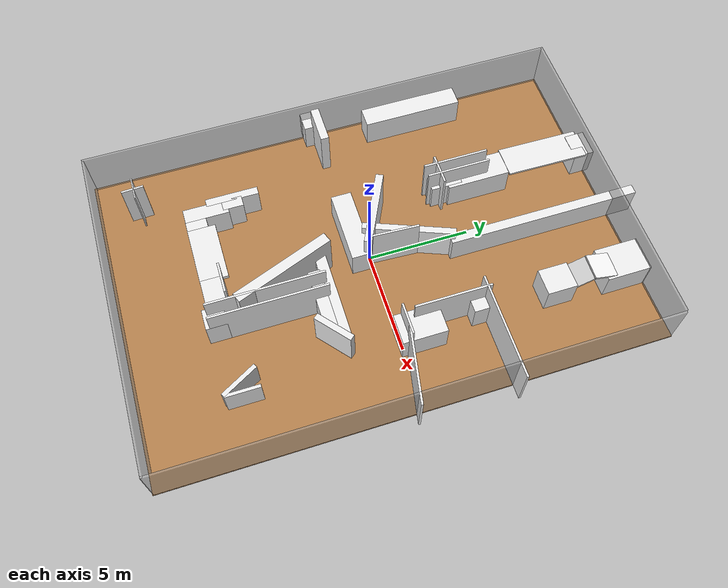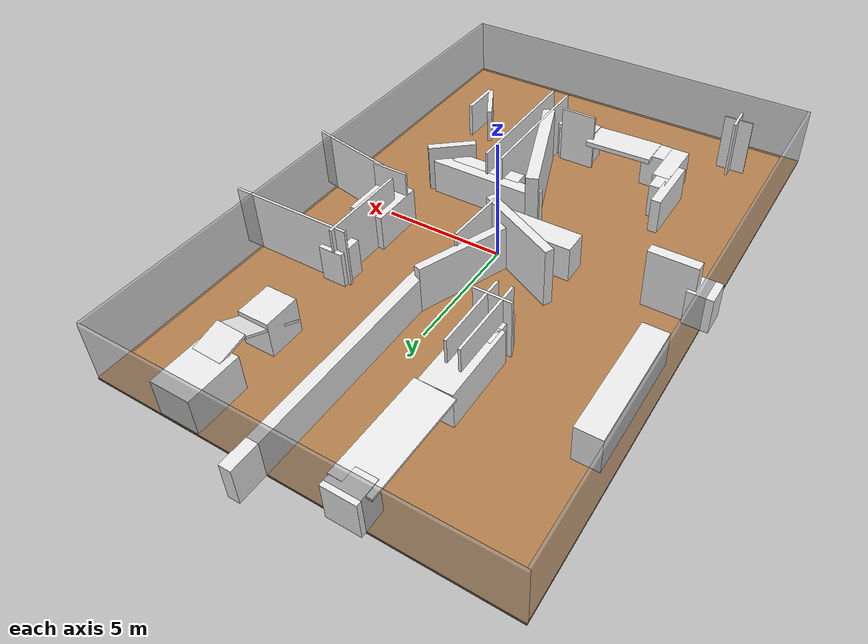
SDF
<sdf version="1.7">
 <world name="default">
  <light name="sun" type="directional">
   <pose>0 0 10 0 -0 0</pose>
   <diffuse>0.8 0.8 0.8 1</diffuse>
   <specular>0.2 0.2 0.2 1</specular>
   <attenuation>
    <range>1000</range>
    <constant>0.9</constant>
    <linear>0.01</linear>
    <quadratic>0.001</quadratic>
   </attenuation>
   <direction>-0.5 0.1 -0.9</direction>
   <spot><inner_angle>0</inner_angle><outer_angle>0</outer_angle><falloff>0</falloff></spot>
  </light>
  <physics name="default_physics" default="0" type="ode">
   <real_time_update_rate>1000</real_time_update_rate>
   <max_step_size>0.001</max_step_size>
   <real_time_factor>1</real_time_factor>
   <ode>
    <solver>
     <type>quick</type>
     <iters>150</iters>
     <precon_iters>0</precon_iters>
     <sor>1.4</sor>
     <use_dynamic_moi_rescaling>1</use_dynamic_moi_rescaling>
    </solver>
    <constraints>
     <cfm>1e-05</cfm>
     <erp>0.2</erp>
     <contact_max_correcting_vel>2000</contact_max_correcting_vel>
     <contact_surface_layer>0.01</contact_surface_layer>
    </constraints>
   </ode>
  </physics>
  <model name="box_1">
   <pose>0.05 -12.05 1.25 0 -0 0</pose>
   <static>1</static>
   <link name="link">
    <collision name="collision"><geometry><box><size>16.1 0.1 2.5</size></box></geometry></collision>
    <visual name="visual">
     <geometry><box><size>16.1 0.1 2.5</size></box></geometry>
     <material>
      <script><name>Gazebo/GreyTransparent</name><uri>file://media/materials/scripts/gazebo.material</uri></script>
     </material>
    </visual>
   </link>
  </model>
  <model name="box_2">
   <pose>8.06174 -0.026302 1.25 0 -0 0</pose>
   <static>1</static>
   <link name="link">
    <collision name="collision"><geometry><box><size>0.1 24.1 2.5</size></box></geometry></collision>
    <visual name="visual">
     <geometry><box><size>0.1 24.1 2.5</size></box></geometry>
     <material>
      <script><name>Gazebo/GreyTransparent</name><uri>file://media/materials/scripts/gazebo.material</uri></script>
     </material>
    </visual>
   </link>
  </model>
  <model name="box_3">
   <pose>-0.05 12.05 1.25 0 -0 0</pose>
   <static>1</static>
   <link name="link">
    <collision name="collision"><geometry><box><size>16.1 0.1 2.5</size></box></geometry></collision>
    <visual name="visual">
     <geometry><box><size>16.1 0.1 2.5</size></box></geometry>
     <material>
      <script><name>Gazebo/GreyTransparent</name><uri>file://media/materials/scripts/gazebo.material</uri></script>
     </material>
    </visual>
   </link>
  </model>
  <model name="box_4">
   <pose>-8.05 -0.05 1.25 0 -0 0</pose>
   <static>1</static>
   <link name="link">
    <collision name="collision"><geometry><box><size>0.1 24.1 2.5</size></box></geometry></collision>
    <visual name="visual">
     <geometry><box><size>0.1 24.1 2.5</size></box></geometry>
     <material>
      <script><name>Gazebo/GreyTransparent</name><uri>file://media/materials/scripts/gazebo.material</uri></script>
     </material>
    </visual>
   </link>
  </model>
  <model name="box_5">
   <pose>0.008855 -0.029843 -0.05 0 -0 0</pose>
   <static>1</static>
   <link name="link">
    <collision name="collision"><geometry><box><size>16.2 24.2 0.1</size></box></geometry></collision>
    <visual name="visual">
     <geometry><box><size>16.2 24.2 0.1</size></box></geometry>
     <material>
      <script><name>Gazebo/WoodFloor</name><uri>file://media/materials/scripts/gazebo.material</uri></script>
     </material>
    </visual>
   </link>
  </model>
  <gravity>0 0 -9.8066</gravity>
  <magnetic_field>6e-06 2.3e-05 -4.2e-05</magnetic_field>
  <atmosphere type="adiabatic"/>
  <scene><ambient>0.4 0.4 0.4 1</ambient><background>0.7 0.7 0.7 1</background><shadows>1</shadows></scene>
  <spherical_coordinates>
   <surface_model>EARTH_WGS84</surface_model>
   <latitude_deg>0</latitude_deg>
   <longitude_deg>0</longitude_deg>
   <elevation>0</elevation>
   <heading_deg>0</heading_deg>
  </spherical_coordinates>
  <model name="box_8_clone">
   <pose>6.785 -0.087834 1.25 0 0 -0.191358</pose>
   <static>1</static>
   <link name="link">
    <collision name="collision"><geometry><box><size>3.67087 0.1 2.5</size></box></geometry></collision>
    <visual name="visual">
     <geometry><box><size>3.67087 0.1 2.5</size></box></geometry>
     <material>
      <script><name>Gazebo/White</name><uri>file://media/materials/scripts/gazebo.material</uri></script>
     </material>
    </visual>
   </link>
  </model>
  <model name="box_9_clone_clone_0">
   <pose>-3.24108 -7.55994 0.75 0 -0 0</pose>
   <static>1</static>
   <link name="link">
    <collision name="collision"><geometry><box><size>1 1 1.5</size></box></geometry></collision>
    <visual name="visual">
     <geometry><box><size>1 1 1.5</size></box></geometry>
     <material>
      <script><name>Gazebo/White</name><uri>file://media/materials/scripts/gazebo.material</uri></script>
     </material>
    </visual>
   </link>
  </model>
  <model name="box_9_clone_clone_1">
   <pose>0.352261 -7.55684 0.75 0 -0 0</pose>
   <static>1</static>
   <link name="link">
    <collision name="collision"><geometry><box><size>1.50562 1 1.5</size></box></geometry></collision>
    <visual name="visual">
     <geometry><box><size>1.50562 1 1.5</size></box></geometry>
     <material>
      <script><name>Gazebo/White</name><uri>file://media/materials/scripts/gazebo.material</uri></script>
     </material>
    </visual>
   </link>
  </model>
  <model name="box_9_clone_clone_2">
   <pose>-4.05415 -6.98085 0.75 0 -0 0</pose>
   <static>1</static>
   <link name="link">
    <collision name="collision"><geometry><box><size>0.728074 2.14113 1.5</size></box></geometry></collision>
    <visual name="visual">
     <geometry><box><size>0.728074 2.14113 1.5</size></box></geometry>
     <material>
      <script><name>Gazebo/White</name><uri>file://media/materials/scripts/gazebo.material</uri></script>
     </material>
    </visual>
   </link>
  </model>
  <model name="box_9_clone_clone_3">
   <pose>5.34447 -7.41709 0.75 0 -0 0</pose>
   <static>1</static>
   <link name="link">
    <collision name="collision"><geometry><box><size>0.152612 1.66543 1.5</size></box></geometry></collision>
    <visual name="visual">
     <geometry><box><size>0.152612 1.66543 1.5</size></box></geometry>
     <material>
      <script><name>Gazebo/White</name><uri>file://media/materials/scripts/gazebo.material</uri></script>
     </material>
    </visual>
   </link>
  </model>
  <model name="box_8_clone_clone_13_clone_clone_clone_clone_0">
   <pose>0.045584 1.92534 0.706232 0 0 -1.95097</pose>
   <static>1</static>
   <link name="link">
    <collision name="collision"><geometry><box><size>4.43938 0.325829 2.5</size></box></geometry></collision>
    <visual name="visual">
     <geometry><box><size>4.43938 0.325829 2.5</size></box></geometry>
     <material>
      <script><name>Gazebo/White</name><uri>file://media/materials/scripts/gazebo.material</uri></script>
     </material>
    </visual>
   </link>
  </model>
  <model name="box_8_clone_clone_11_clone">
   <pose>0.547651 -4.29786 1.25 0 0 -2.77666</pose>
   <static>1</static>
   <link name="link">
    <collision name="collision"><geometry><box><size>0.506942 5.04986 2.5</size></box></geometry></collision>
    <visual name="visual">
     <geometry><box><size>0.506942 5.04986 2.5</size></box></geometry>
     <material>
      <script><name>Gazebo/White</name><uri>file://media/materials/scripts/gazebo.material</uri></script>
     </material>
    </visual>
   </link>
  </model>
  <model name="box_8_clone_clone_4_clone_2">
   <pose>-1.23511 0.601944 1.25 0 -0 2.68738</pose>
   <static>1</static>
   <link name="link">
    <collision name="collision"><geometry><box><size>3.75949 0.370167 2.5</size></box></geometry></collision>
    <visual name="visual">
     <geometry><box><size>3.75949 0.370167 2.5</size></box></geometry>
     <material>
      <script><name>Gazebo/White</name><uri>file://media/materials/scripts/gazebo.material</uri></script>
     </material>
    </visual>
   </link>
  </model>
  <model name="box_9_clone_clone_7_clone">
   <pose>-7.20708 4.47733 0.75 0 -0 0</pose>
   <static>1</static>
   <link name="link">
    <collision name="collision"><geometry><box><size>1 4.97616 1.5</size></box></geometry></collision>
    <visual name="visual">
     <geometry><box><size>1 4.97616 1.5</size></box></geometry>
     <material>
      <script><name>Gazebo/White</name><uri>file://media/materials/scripts/gazebo.material</uri></script>
     </material>
    </visual>
   </link>
  </model>
  <model name="box_9_clone_clone_7_clone_clone">
   <pose>-7.89766 -0.627489 0.75 0 -0 0</pose>
   <static>1</static>
   <link name="link">
    <collision name="collision"><geometry><box><size>1 1 1.5</size></box></geometry></collision>
    <visual name="visual">
     <geometry><box><size>1 1 1.5</size></box></geometry>
     <material>
      <script><name>Gazebo/White</name><uri>file://media/materials/scripts/gazebo.material</uri></script>
     </material>
    </visual>
   </link>
  </model>
  <model name="box_9_clone_clone_7_clone_clone_3">
   <pose>-4.51233 -5.59662 0.75 0 -0 0</pose>
   <static>1</static>
   <link name="link">
    <collision name="collision"><geometry><box><size>0.396462 2.57973 1.5</size></box></geometry></collision>
    <visual name="visual">
     <geometry><box><size>0.396462 2.57973 1.5</size></box></geometry>
     <material>
      <script><name>Gazebo/White</name><uri>file://media/materials/scripts/gazebo.material</uri></script>
     </material>
    </visual>
   </link>
  </model>
  <model name="box_9_clone_clone_7_clone_clone_4">
   <pose>-1.76203 -7.3925 1.38489 0 -1.54749 0</pose>
   <static>1</static>
   <link name="link">
    <collision name="collision"><geometry><box><size>0.206609 1.34821 2.856</size></box></geometry></collision>
    <visual name="visual">
     <geometry><box><size>0.206609 1.34821 2.856</size></box></geometry>
     <material>
      <script><name>Gazebo/White</name><uri>file://media/materials/scripts/gazebo.material</uri></script>
     </material>
    </visual>
   </link>
  </model>
  <model name="box_9_clone_clone_7_clone_clone_5">
   <pose>-4.14775 -5.66293 0.75 0 -0 0</pose>
   <static>1</static>
   <link name="link">
    <collision name="collision"><geometry><box><size>0.542495 1 1.5</size></box></geometry></collision>
    <visual name="visual">
     <geometry><box><size>0.542495 1 1.5</size></box></geometry>
     <material>
      <script><name>Gazebo/White</name><uri>file://media/materials/scripts/gazebo.material</uri></script>
     </material>
    </visual>
   </link>
  </model>
  <model name="box_9_clone_clone_5_clone_2_clone_0">
   <pose>4.39452 7.68685 0.75 0 -0 0</pose>
   <static>1</static>
   <link name="link">
    <collision name="collision"><geometry><box><size>1.2731 1.44493 1.5</size></box></geometry></collision>
    <visual name="visual">
     <geometry><box><size>1.2731 1.44493 1.5</size></box></geometry>
     <material>
      <script><name>Gazebo/White</name><uri>file://media/materials/scripts/gazebo.material</uri></script>
     </material>
    </visual>
   </link>
  </model>
  <model name="box_9_clone_clone_5_clone_2_clone_0_clone_0">
   <pose>4.83543 -7.43802 0.75 0 -0 2.07875</pose>
   <static>1</static>
   <link name="link">
    <collision name="collision"><geometry><box><size>1.90123 0.208944 1.5</size></box></geometry></collision>
    <visual name="visual">
     <geometry><box><size>1.90123 0.208944 1.5</size></box></geometry>
     <material>
      <script><name>Gazebo/White</name><uri>file://media/materials/scripts/gazebo.material</uri></script>
     </material>
    </visual>
   </link>
  </model>
  <model name="box_6_clone_clone_4_clone">
   <pose>4.47434 10.5847 1.40455 0 -1.3182 1.53996</pose>
   <static>1</static>
   <link name="link">
    <collision name="collision"><geometry><box><size>0.1 1.23982 2.76392</size></box></geometry></collision>
    <visual name="visual">
     <geometry><box><size>0.1 1.23982 2.76392</size></box></geometry>
     <material>
      <script><name>Gazebo/White</name><uri>file://media/materials/scripts/gazebo.material</uri></script>
     </material>
    </visual>
   </link>
  </model>
  <model name="box_9_clone_clone_7_clone_clone_clone">
   <pose>-1.2304 -0.521784 0.75 0 -0 0</pose>
   <static>1</static>
   <link name="link">
    <collision name="collision"><geometry><box><size>3.55314 1 1.5</size></box></geometry></collision>
    <visual name="visual">
     <geometry><box><size>3.55314 1 1.5</size></box></geometry>
     <material>
      <script><name>Gazebo/White</name><uri>file://media/materials/scripts/gazebo.material</uri></script>
     </material>
    </visual>
   </link>
  </model>
  <model name="box_8_clone_clone_3_clone">
   <pose>6.25131 4.20674 1.25 0 -0 0</pose>
   <static>1</static>
   <link name="link">
    <collision name="collision"><geometry><box><size>5.04273 0.1 2.5</size></box></geometry></collision>
    <visual name="visual">
     <geometry><box><size>5.04273 0.1 2.5</size></box></geometry>
     <material>
      <script><name>Gazebo/White</name><uri>file://media/materials/scripts/gazebo.material</uri></script>
     </material>
    </visual>
   </link>
  </model>
  <model name="box_9_clone_clone_7_clone_0">
   <pose>0.952701 8.47024 0.75 0 -0 0</pose>
   <static>1</static>
   <link name="link">
    <collision name="collision"><geometry><box><size>0.463616 9.49899 1.5</size></box></geometry></collision>
    <visual name="visual">
     <geometry><box><size>0.463616 9.49899 1.5</size></box></geometry>
     <material>
      <script><name>Gazebo/White</name><uri>file://media/materials/scripts/gazebo.material</uri></script>
     </material>
    </visual>
   </link>
  </model>
  <model name="box_9_clone_clone_9_clone">
   <pose>-2.30467 11.7929 0.75 0 -0 0</pose>
   <static>1</static>
   <link name="link">
    <collision name="collision"><geometry><box><size>1.30137 1 1.5</size></box></geometry></collision>
    <visual name="visual">
     <geometry><box><size>1.30137 1 1.5</size></box></geometry>
     <material>
      <script><name>Gazebo/White</name><uri>file://media/materials/scripts/gazebo.material</uri></script>
     </material>
    </visual>
   </link>
  </model>
  <model name="box_6_clone_clone_3_clone_clone_clone">
   <pose>-2.74377 5.24994 1.25 0 -0 0</pose>
   <static>1</static>
   <link name="link">
    <collision name="collision"><geometry><box><size>0.1 3.23033 2.5</size></box></geometry></collision>
    <visual name="visual">
     <geometry><box><size>0.1 3.23033 2.5</size></box></geometry>
     <material>
      <script><name>Gazebo/White</name><uri>file://media/materials/scripts/gazebo.material</uri></script>
     </material>
    </visual>
   </link>
  </model>
  <model name="box_6_clone_clone_3_clone_clone_clone_clone">
   <pose>4.22525 2.59008 1.25 0 -0 0</pose>
   <static>1</static>
   <link name="link">
    <collision name="collision"><geometry><box><size>0.1 3.67789 2.5</size></box></geometry></collision>
    <visual name="visual">
     <geometry><box><size>0.1 3.67789 2.5</size></box></geometry>
     <material>
      <script><name>Gazebo/White</name><uri>file://media/materials/scripts/gazebo.material</uri></script>
     </material>
    </visual>
   </link>
  </model>
  <model name="box_6_clone_clone_3_clone_clone_clone_clone_0">
   <pose>2.0182 -5.31678 1.25 0 -0 0</pose>
   <static>1</static>
   <link name="link">
    <collision name="collision"><geometry><box><size>0.1 5.60332 2.5</size></box></geometry></collision>
    <visual name="visual">
     <geometry><box><size>0.1 5.60332 2.5</size></box></geometry>
     <material>
      <script><name>Gazebo/White</name><uri>file://media/materials/scripts/gazebo.material</uri></script>
     </material>
    </visual>
   </link>
  </model>
  <model name="box_6_clone_clone_3_clone_clone_clone_clone_0_clone">
   <pose>1.33283 -5.29976 1.25 0 -0 0</pose>
   <static>1</static>
   <link name="link">
    <collision name="collision"><geometry><box><size>0.1 5.60332 2.5</size></box></geometry></collision>
    <visual name="visual">
     <geometry><box><size>0.1 5.60332 2.5</size></box></geometry>
     <material>
      <script><name>Gazebo/White</name><uri>file://media/materials/scripts/gazebo.material</uri></script>
     </material>
    </visual>
   </link>
  </model>
  <model name="box_9_clone_clone_5_clone_2_clone_0_clone_clone">
   <pose>1.9469 -2.43744 0.75 0 -0 0</pose>
   <static>1</static>
   <link name="link">
    <collision name="collision"><geometry><box><size>4.74882 0.537178 1.5</size></box></geometry></collision>
    <visual name="visual">
     <geometry><box><size>4.74882 0.537178 1.5</size></box></geometry>
     <material>
      <script><name>Gazebo/White</name><uri>file://media/materials/scripts/gazebo.material</uri></script>
     </material>
    </visual>
   </link>
  </model>
  <model name="box_8_clone_clone">
   <pose>4.67077 0.276191 1.25 0 -0 0</pose>
   <static>1</static>
   <link name="link">
    <collision name="collision"><geometry><box><size>1.5 0.1 2.5</size></box></geometry></collision>
    <visual name="visual">
     <geometry><box><size>1.5 0.1 2.5</size></box></geometry>
     <material>
      <script><name>Gazebo/White</name><uri>file://media/materials/scripts/gazebo.material</uri></script>
     </material>
    </visual>
   </link>
  </model>
  <model name="box_9_clone_clone_7_clone_clone_0">
   <pose>-2.43804 4.59154 0.75 0 -0 0</pose>
   <static>1</static>
   <link name="link">
    <collision name="collision"><geometry><box><size>1 1.54675 1.5</size></box></geometry></collision>
    <visual name="visual">
     <geometry><box><size>1 1.54675 1.5</size></box></geometry>
     <material>
      <script><name>Gazebo/White</name><uri>file://media/materials/scripts/gazebo.material</uri></script>
     </material>
    </visual>
   </link>
  </model>
  <model name="box_9_clone_clone_5_clone_2_clone_0_clone_0_clone">
   <pose>1.56966 -7.808 0.75 0 -0 0</pose>
   <static>1</static>
   <link name="link">
    <collision name="collision"><geometry><box><size>1 1 1.5</size></box></geometry></collision>
    <visual name="visual">
     <geometry><box><size>1 1 1.5</size></box></geometry>
     <material>
      <script><name>Gazebo/White</name><uri>file://media/materials/scripts/gazebo.material</uri></script>
     </material>
    </visual>
   </link>
  </model>
  <model name="box_9_clone_clone_5_clone_2_clone_clone_clone_0_clone">
   <pose>4.3636 3.94247 0.75 0 -0 0</pose>
   <static>1</static>
   <link name="link">
    <collision name="collision"><geometry><box><size>0.996807 1.00784 1.5</size></box></geometry></collision>
    <visual name="visual">
     <geometry><box><size>0.996807 1.00784 1.5</size></box></geometry>
     <material>
      <script><name>Gazebo/White</name><uri>file://media/materials/scripts/gazebo.material</uri></script>
     </material>
    </visual>
   </link>
  </model>
  <model name="box_9_clone_clone_5_clone_2_clone_clone_clone_0_clone_clone">
   <pose>4.63539 0.931491 0.75 0 -0 0</pose>
   <static>1</static>
   <link name="link">
    <collision name="collision"><geometry><box><size>1.44369 2.14316 1.5</size></box></geometry></collision>
    <visual name="visual">
     <geometry><box><size>1.44369 2.14316 1.5</size></box></geometry>
     <material>
      <script><name>Gazebo/White</name><uri>file://media/materials/scripts/gazebo.material</uri></script>
     </material>
    </visual>
   </link>
  </model>
  <model name="box_6_clone_clone_3_clone_clone_clone_clone_1">
   <pose>-2.16782 5.21001 1.25 0 -0 0.001144</pose>
   <static>1</static>
   <link name="link">
    <collision name="collision"><geometry><box><size>0.1 3.12165 2.5</size></box></geometry></collision>
    <visual name="visual">
     <geometry><box><size>0.1 3.12165 2.5</size></box></geometry>
     <material>
      <script><name>Gazebo/White</name><uri>file://media/materials/scripts/gazebo.material</uri></script>
     </material>
    </visual>
   </link>
  </model>
  <model name="box_9_clone_clone_8_clone_0_clone">
   <pose>-2.43485 6.21978 0.75 0 -0 0</pose>
   <static>1</static>
   <link name="link">
    <collision name="collision"><geometry><box><size>1.29716 3.13013 1.5</size></box></geometry></collision>
    <visual name="visual">
     <geometry><box><size>1.29716 3.13013 1.5</size></box></geometry>
     <material>
      <script><name>Gazebo/White</name><uri>file://media/materials/scripts/gazebo.material</uri></script>
     </material>
    </visual>
   </link>
  </model>
  <model name="box_8_clone_clone_3_clone_clone_clone">
   <pose>-6.73637 -0.479811 1.25 0 -0 0</pose>
   <static>1</static>
   <link name="link">
    <collision name="collision"><geometry><box><size>1.9027 0.415191 2.5</size></box></geometry></collision>
    <visual name="visual">
     <geometry><box><size>1.9027 0.415191 2.5</size></box></geometry>
     <material>
      <script><name>Gazebo/White</name><uri>file://media/materials/scripts/gazebo.material</uri></script>
     </material>
    </visual>
   </link>
  </model>
  <audio><device>default</device></audio>
  <model name="box_6_clone_clone_4_clone_clone">
   <pose>4.38248 8.16427 1.1171 0 -1.11157 -1.60232</pose>
   <static>1</static>
   <link name="link">
    <collision name="collision"><geometry><box><size>0.1 1.21917 2.5</size></box></geometry></collision>
    <visual name="visual">
     <geometry><box><size>0.1 1.21917 2.5</size></box></geometry>
     <material>
      <script><name>Gazebo/White</name><uri>file://media/materials/scripts/gazebo.material</uri></script>
     </material>
    </visual>
   </link>
  </model>
  <model name="box_9_clone_clone_5_clone_2_clone_0_clone_0_clone_0">
   <pose>2.1768 -2.92414 0.75 0 -0 0</pose>
   <static>1</static>
   <link name="link">
    <collision name="collision"><geometry><box><size>3.04317 0.593497 1.5</size></box></geometry></collision>
    <visual name="visual">
     <geometry><box><size>3.04317 0.593497 1.5</size></box></geometry>
     <material>
      <script><name>Gazebo/White</name><uri>file://media/materials/scripts/gazebo.material</uri></script>
     </material>
    </visual>
   </link>
  </model>
  <model name="box_8_clone_clone_11_clone_clone">
   <pose>3.89153 -2.87277 1.05609 0 0 -2.44652</pose>
   <static>1</static>
   <link name="link">
    <collision name="collision"><geometry><box><size>1.95674 0.302741 2.01186</size></box></geometry></collision>
    <visual name="visual">
     <geometry><box><size>1.95674 0.302741 2.01186</size></box></geometry>
     <material>
      <script><name>Gazebo/White</name><uri>file://media/materials/scripts/gazebo.material</uri></script>
     </material>
    </visual>
   </link>
  </model>
  <model name="box_8_clone_clone_11_clone_clone_0">
   <pose>-5.67141 -10.0374 1.25 0 -0 1.62008</pose>
   <static>1</static>
   <link name="link">
    <collision name="collision"><geometry><box><size>1.06277 0.1 2.5</size></box></geometry></collision>
    <visual name="visual">
     <geometry><box><size>1.06277 0.1 2.5</size></box></geometry>
     <material>
      <script><name>Gazebo/White</name><uri>file://media/materials/scripts/gazebo.material</uri></script>
     </material>
    </visual>
   </link>
  </model>
  <model name="box_8_clone_clone_11_clone_clone_1">
   <pose>-5.71384 -9.99262 1.25 0 -0 0</pose>
   <static>1</static>
   <link name="link">
    <collision name="collision"><geometry><box><size>1.19714 0.0589998 2.5</size></box></geometry></collision>
    <visual name="visual">
     <geometry><box><size>1.19714 0.0589998 2.5</size></box></geometry>
     <material>
      <script><name>Gazebo/White</name><uri>file://media/materials/scripts/gazebo.material</uri></script>
     </material>
    </visual>
   </link>
  </model>
  <model name="box_8_clone_clone_11_clone_clone_1_clone">
   <pose>0.220749 -7.0443 1.25 0 -0 0</pose>
   <static>1</static>
   <link name="link">
    <collision name="collision"><geometry><box><size>1.5 0.1 2.5</size></box></geometry></collision>
    <visual name="visual">
     <geometry><box><size>1.5 0.1 2.5</size></box></geometry>
     <material>
      <script><name>Gazebo/White</name><uri>file://media/materials/scripts/gazebo.material</uri></script>
     </material>
    </visual>
   </link>
  </model>
  <model name="box_8_clone_clone_4_clone_2_clone">
   <pose>-2.37022 4.28765 1.25 0 -0 0</pose>
   <static>1</static>
   <link name="link">
    <collision name="collision"><geometry><box><size>1.5 0.1 2.5</size></box></geometry></collision>
    <visual name="visual">
     <geometry><box><size>1.5 0.1 2.5</size></box></geometry>
     <material>
      <script><name>Gazebo/White</name><uri>file://media/materials/scripts/gazebo.material</uri></script>
     </material>
    </visual>
   </link>
  </model>
  <model name="box_8_clone_clone_4_clone_2_clone_clone">
   <pose>0.276899 1.09814 1.25 0 0 -1.61998</pose>
   <static>1</static>
   <link name="link">
    <collision name="collision"><geometry><box><size>2.43681 0.1 2.5</size></box></geometry></collision>
    <visual name="visual">
     <geometry><box><size>2.43681 0.1 2.5</size></box></geometry>
     <material>
      <script><name>Gazebo/White</name><uri>file://media/materials/scripts/gazebo.material</uri></script>
     </material>
    </visual>
   </link>
  </model>
  <model name="box_9_clone_clone_5_clone_2_clone_0_clone">
   <pose>4.37503 10.9768 0.75 0 -0 0</pose>
   <static>1</static>
   <link name="link">
    <collision name="collision"><geometry><box><size>1.62846 2.15198 1.5</size></box></geometry></collision>
    <visual name="visual">
     <geometry><box><size>1.62846 2.15198 1.5</size></box></geometry>
     <material>
      <script><name>Gazebo/White</name><uri>file://media/materials/scripts/gazebo.material</uri></script>
     </material>
    </visual>
   </link>
  </model>
  <model name="box_8_clone_clone_3_clone_clone_clone_0">
   <pose>-2.41847 9.84203 1.44047 -1.57067 -0.035681 -0.014782</pose>
   <static>1</static>
   <link name="link">
    <collision name="collision"><geometry><box><size>1.56252 0.1 4.08788</size></box></geometry></collision>
    <visual name="visual">
     <geometry><box><size>1.56252 0.1 4.08788</size></box></geometry>
     <material>
      <script><name>Gazebo/White</name><uri>file://media/materials/scripts/gazebo.material</uri></script>
     </material>
    </visual>
   </link>
  </model>
 </world>
</sdf>
